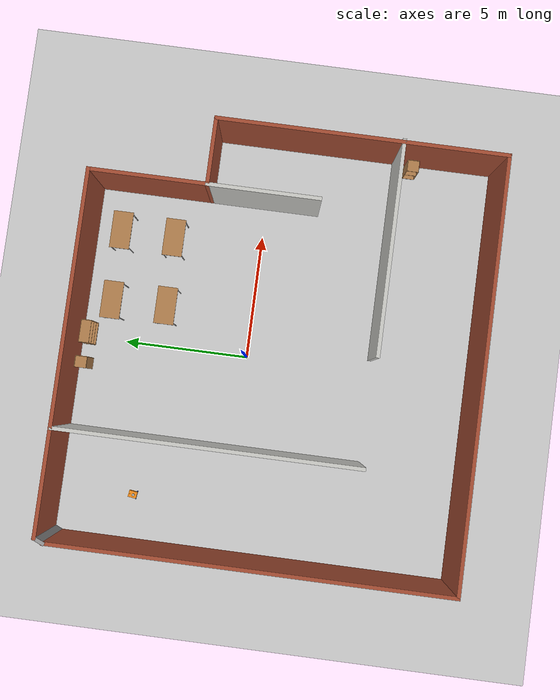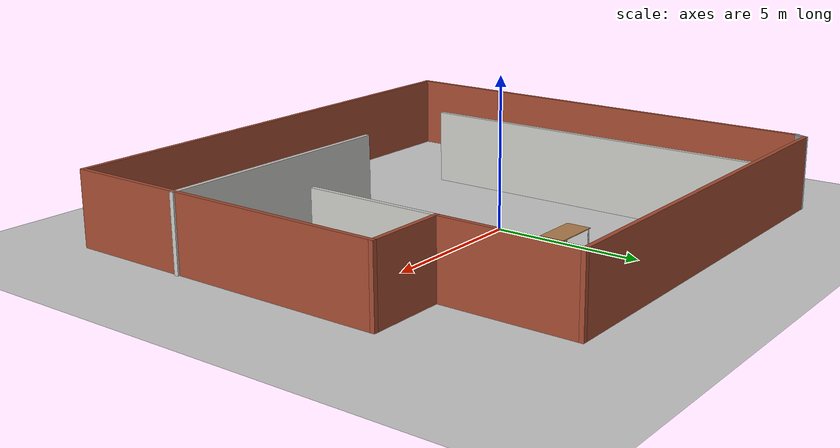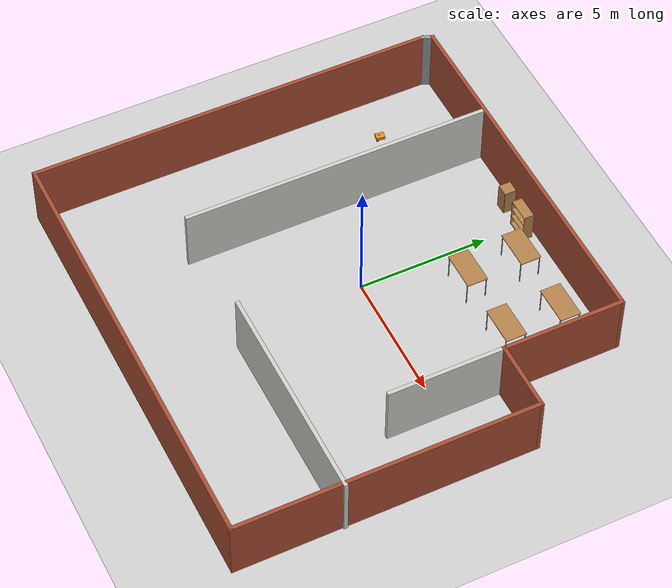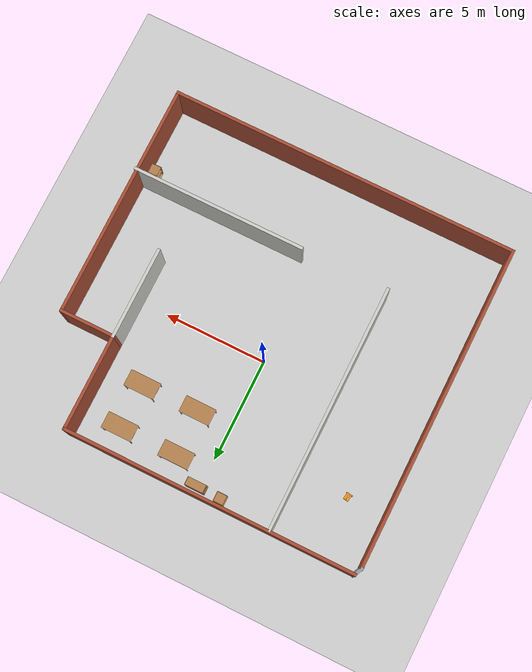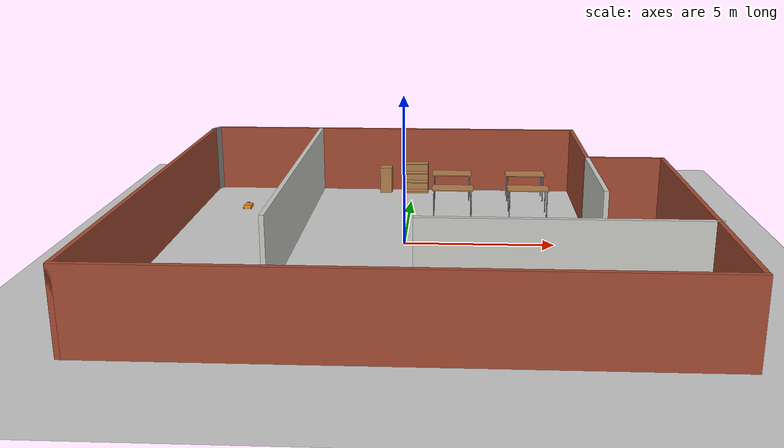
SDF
<sdf version="1.7">
 <world name="default">
  <light name="sun" type="directional">
   <pose>0 0 10 0 -0 0</pose>
   <diffuse>0.8 0.8 0.8 1</diffuse>
   <specular>0.2 0.2 0.2 1</specular>
   <attenuation>
    <range>1000</range>
    <constant>0.9</constant>
    <linear>0.01</linear>
    <quadratic>0.001</quadratic>
   </attenuation>
   <direction>-0.5 0.1 -0.9</direction>
   <spot><inner_angle>0</inner_angle><outer_angle>0</outer_angle><falloff>0</falloff></spot>
  </light>
  <model name="ground_plane">
   <static>1</static>
   <link name="link">
    <collision name="collision">
     <geometry><plane><normal>0 0 1</normal><size>100 100</size></plane></geometry>
     <surface>
      <contact><collide_bitmask>65535</collide_bitmask></contact>
      <friction><ode><mu>100</mu><mu2>50</mu2></ode></friction>
     </surface>
    </collision>
    <visual name="visual">
     <cast_shadows>0</cast_shadows>
     <geometry><plane><normal>0 0 1</normal><size>100 100</size></plane></geometry>
     <material>
      <script><uri>file://media/materials/scripts/gazebo.material</uri><name>Gazebo/Grey</name></script>
     </material>
    </visual>
   </link>
  </model>
  <gravity>0 0 -9.8</gravity>
  <magnetic_field>6e-06 2.3e-05 -4.2e-05</magnetic_field>
  <atmosphere type="adiabatic"/>
  <physics name="default_physics" default="0" type="ode">
   <max_step_size>0.001</max_step_size>
   <real_time_factor>1</real_time_factor>
   <real_time_update_rate>1000</real_time_update_rate>
  </physics>
  <scene><ambient>0.4 0.4 0.4 1</ambient><background>0.7 0.7 0.7 1</background><shadows>1</shadows></scene>
  <spherical_coordinates>
   <surface_model>EARTH_WGS84</surface_model>
   <latitude_deg>0</latitude_deg>
   <longitude_deg>0</longitude_deg>
   <elevation>0</elevation>
   <heading_deg>0</heading_deg>
  </spherical_coordinates>
  <model name="gcamp_small_building">
   <pose>0.46855 -1.10251 0 0 -0 0</pose>
   <link name="Wall_11">
    <collision name="Wall_11_Collision">
     <geometry><box><size>12 0.15 2.5</size></box></geometry>
     <pose>0 0 1.25 0 -0 0</pose>
    </collision>
    <visual name="Wall_11_Visual">
     <pose>0 0 1.25 0 -0 0</pose>
     <geometry><box><size>12 0.15 2.5</size></box></geometry>
     <material>
      <script><uri>file://media/materials/scripts/gazebo.material</uri><name>Gazebo/CeilingTiled</name></script>
      <ambient>1 1 1 1</ambient>
     </material>
     <meta><layer>0</layer></meta>
    </visual>
    <pose>-4.16991 2.00561 0 0 -0 -1.5708</pose>
   </link>
   <link name="Wall_13">
    <collision name="Wall_13_Collision">
     <geometry><box><size>8.5 0.15 2.5</size></box></geometry>
     <pose>0 0 1.25 0 -0 0</pose>
    </collision>
    <visual name="Wall_13_Visual">
     <pose>0 0 1.25 0 -0 0</pose>
     <geometry><box><size>8.5 0.15 2.5</size></box></geometry>
     <material>
      <script><uri>file://media/materials/scripts/gazebo.material</uri><name>Gazebo/CeilingTiled</name></script>
      <ambient>1 1 1 1</ambient>
     </material>
     <meta><layer>0</layer></meta>
    </visual>
    <pose>4.29338 -3.92287 0 0 -0 0</pose>
   </link>
   <link name="Wall_15">
    <collision name="Wall_15_Collision">
     <geometry><box><size>4.5 0.15 2.5</size></box></geometry>
     <pose>0 0 1.25 0 -0 0</pose>
    </collision>
    <visual name="Wall_15_Visual">
     <pose>0 0 1.25 0 -0 0</pose>
     <geometry><box><size>4.5 0.15 2.5</size></box></geometry>
     <material>
      <script><uri>file://media/materials/scripts/gazebo.material</uri><name>Gazebo/CeilingTiled</name></script>
      <ambient>1 1 1 1</ambient>
     </material>
     <meta><layer>0</layer></meta>
    </visual>
    <pose>5.8051 1.18826 0 0 -0 -1.5708</pose>
   </link>
   <link name="Wall_3">
    <collision name="Wall_3_Collision">
     <geometry><box><size>15.75 0.15 2.5</size></box></geometry>
     <pose>0 0 1.25 0 -0 0</pose>
    </collision>
    <visual name="Wall_3_Visual">
     <pose>0 0 1.25 0 -0 0</pose>
     <geometry><box><size>15.75 0.15 2.5</size></box></geometry>
     <material>
      <script><uri>file://media/materials/scripts/gazebo.material</uri><name>Gazebo/Bricks</name></script>
      <ambient>1 1 1 1</ambient>
     </material>
     <meta><layer>0</layer></meta>
    </visual>
    <pose>-8.4449 -0.18674 0 0 -0 -1.5708</pose>
   </link>
   <link name="Wall_4">
    <collision name="Wall_4_Collision">
     <geometry><box><size>17 0.15 2.5</size></box></geometry>
     <pose>0 0 1.25 0 -0 0</pose>
    </collision>
    <visual name="Wall_4_Visual">
     <pose>0 0 1.25 0 -0 0</pose>
     <geometry><box><size>17 0.15 2.5</size></box></geometry>
     <material>
      <script><uri>file://media/materials/scripts/gazebo.material</uri><name>Gazebo/Bricks</name></script>
      <ambient>1 1 1 1</ambient>
     </material>
     <meta><layer>0</layer></meta>
    </visual>
    <pose>-0.019899 -7.98674 0 0 -0 0</pose>
   </link>
   <link name="Wall_5">
    <collision name="Wall_5_Collision">
     <geometry><box><size>11.5 0.15 2.5</size></box></geometry>
     <pose>0 0 1.25 0 -0 0</pose>
    </collision>
    <visual name="Wall_5_Visual">
     <pose>0 0 1.25 0 -0 0</pose>
     <geometry><box><size>11.5 0.15 2.5</size></box></geometry>
     <material>
      <script><uri>file://media/materials/scripts/gazebo.material</uri><name>Gazebo/Bricks</name></script>
      <ambient>1 1 1 1</ambient>
     </material>
     <meta><layer>0</layer></meta>
    </visual>
    <pose>8.4051 -2.31174 0 0 -0 1.5708</pose>
   </link>
   <link name="Wall_6">
    <collision name="Wall_6_Collision">
     <geometry><box><size>2.75 0.15 2.5</size></box></geometry>
     <pose>0 0 1.25 0 -0 0</pose>
    </collision>
    <visual name="Wall_6_Visual">
     <pose>0 0 1.25 0 -0 0</pose>
     <geometry><box><size>2.75 0.15 2.5</size></box></geometry>
     <material>
      <script><uri>file://media/materials/scripts/gazebo.material</uri><name>Gazebo/Bricks</name></script>
      <ambient>1 1 1 1</ambient>
     </material>
     <meta><layer>0</layer></meta>
    </visual>
    <pose>7.1051 3.36326 0 0 -0 3.14159</pose>
   </link>
   <link name="Wall_7">
    <collision name="Wall_7_Collision">
     <geometry><box><size>4.75 0.15 2.5</size></box></geometry>
     <pose>0 0 1.25 0 -0 0</pose>
    </collision>
    <visual name="Wall_7_Visual">
     <pose>0 0 1.25 0 -0 0</pose>
     <geometry><box><size>4.75 0.15 2.5</size></box></geometry>
     <material>
      <script><uri>file://media/materials/scripts/gazebo.material</uri><name>Gazebo/Bricks</name></script>
      <ambient>1 1 1 1</ambient>
     </material>
     <meta><layer>0</layer></meta>
    </visual>
    <pose>5.8051 5.66326 0 0 -0 1.5708</pose>
   </link>
   <link name="Wall_8">
    <collision name="Wall_8_Collision">
     <geometry><box><size>14.25 0.15 2.5</size></box></geometry>
     <pose>0 0 1.25 0 -0 0</pose>
    </collision>
    <visual name="Wall_8_Visual">
     <pose>0 0 1.25 0 -0 0</pose>
     <geometry><box><size>14.25 0.15 2.5</size></box></geometry>
     <material>
      <script><uri>file://media/materials/scripts/gazebo.material</uri><name>Gazebo/Bricks</name></script>
      <ambient>1 1 1 1</ambient>
     </material>
     <meta><layer>0</layer></meta>
    </visual>
    <pose>-1.2449 7.96326 0 0 -0 3.14159</pose>
   </link>
   <link name="Wall_9">
    <collision name="Wall_9_Collision">
     <geometry><box><size>0.530789 0.15 2.5</size></box></geometry>
     <pose>0 0 1.25 0 -0 0</pose>
    </collision>
    <visual name="Wall_9_Visual">
     <pose>0 0 1.25 0 -0 0</pose>
     <geometry><box><size>0.530789 0.15 2.5</size></box></geometry>
     <material>
      <script><uri>file://media/materials/scripts/gazebo.material</uri><name>Gazebo/Grey</name></script>
      <ambient>1 1 1 1</ambient>
     </material>
     <meta><layer>0</layer></meta>
    </visual>
    <pose>-8.3699 7.78826 0 0 -0 -1.97569</pose>
   </link>
   <static>1</static>
  </model>
  <model name="table">
   <static>1</static>
   <link name="link">
    <collision name="surface">
     <pose>0 0 1 0 -0 0</pose>
     <geometry><box><size>1.5 0.8 0.03</size></box></geometry>
     <surface><friction><ode><mu>0.6</mu><mu2>0.6</mu2></ode></friction></surface>
    </collision>
    <visual name="visual1">
     <pose>0 0 1 0 -0 0</pose>
     <geometry><box><size>1.5 0.8 0.03</size></box></geometry>
     <material>
      <script><uri>file://media/materials/scripts/gazebo.material</uri><name>Gazebo/Wood</name></script>
     </material>
    </visual>
    <collision name="front_left_leg">
     <pose>0.68 0.38 0.5 0 -0 0</pose>
     <geometry><cylinder><radius>0.02</radius><length>1</length></cylinder></geometry>
    </collision>
    <visual name="front_left_leg">
     <pose>0.68 0.38 0.5 0 -0 0</pose>
     <geometry><cylinder><radius>0.02</radius><length>1</length></cylinder></geometry>
     <material>
      <script><uri>file://media/materials/scripts/gazebo.material</uri><name>Gazebo/Grey</name></script>
     </material>
    </visual>
    <collision name="front_right_leg">
     <pose>0.68 -0.38 0.5 0 -0 0</pose>
     <geometry><cylinder><radius>0.02</radius><length>1</length></cylinder></geometry>
    </collision>
    <visual name="front_right_leg">
     <pose>0.68 -0.38 0.5 0 -0 0</pose>
     <geometry><cylinder><radius>0.02</radius><length>1</length></cylinder></geometry>
     <material>
      <script><uri>file://media/materials/scripts/gazebo.material</uri><name>Gazebo/Grey</name></script>
     </material>
    </visual>
    <collision name="back_right_leg">
     <pose>-0.68 -0.38 0.5 0 -0 0</pose>
     <geometry><cylinder><radius>0.02</radius><length>1</length></cylinder></geometry>
    </collision>
    <visual name="back_right_leg">
     <pose>-0.68 -0.38 0.5 0 -0 0</pose>
     <geometry><cylinder><radius>0.02</radius><length>1</length></cylinder></geometry>
     <material>
      <script><uri>file://media/materials/scripts/gazebo.material</uri><name>Gazebo/Grey</name></script>
     </material>
    </visual>
    <collision name="back_left_leg">
     <pose>-0.68 0.38 0.5 0 -0 0</pose>
     <geometry><cylinder><radius>0.02</radius><length>1</length></cylinder></geometry>
    </collision>
    <visual name="back_left_leg">
     <pose>-0.68 0.38 0.5 0 -0 0</pose>
     <geometry><cylinder><radius>0.02</radius><length>1</length></cylinder></geometry>
     <material>
      <script><uri>file://media/materials/scripts/gazebo.material</uri><name>Gazebo/Grey</name></script>
     </material>
    </visual>
   </link>
   <pose>4.38563 5.61757 0 0 -0 0</pose>
  </model>
  <model name="table_0">
   <static>1</static>
   <link name="link">
    <collision name="surface">
     <pose>0 0 1 0 -0 0</pose>
     <geometry><box><size>1.5 0.8 0.03</size></box></geometry>
     <surface><friction><ode><mu>0.6</mu><mu2>0.6</mu2></ode></friction></surface>
    </collision>
    <visual name="visual1">
     <pose>0 0 1 0 -0 0</pose>
     <geometry><box><size>1.5 0.8 0.03</size></box></geometry>
     <material>
      <script><uri>file://media/materials/scripts/gazebo.material</uri><name>Gazebo/Wood</name></script>
     </material>
    </visual>
    <collision name="front_left_leg">
     <pose>0.68 0.38 0.5 0 -0 0</pose>
     <geometry><cylinder><radius>0.02</radius><length>1</length></cylinder></geometry>
    </collision>
    <visual name="front_left_leg">
     <pose>0.68 0.38 0.5 0 -0 0</pose>
     <geometry><cylinder><radius>0.02</radius><length>1</length></cylinder></geometry>
     <material>
      <script><uri>file://media/materials/scripts/gazebo.material</uri><name>Gazebo/Grey</name></script>
     </material>
    </visual>
    <collision name="front_right_leg">
     <pose>0.68 -0.38 0.5 0 -0 0</pose>
     <geometry><cylinder><radius>0.02</radius><length>1</length></cylinder></geometry>
    </collision>
    <visual name="front_right_leg">
     <pose>0.68 -0.38 0.5 0 -0 0</pose>
     <geometry><cylinder><radius>0.02</radius><length>1</length></cylinder></geometry>
     <material>
      <script><uri>file://media/materials/scripts/gazebo.material</uri><name>Gazebo/Grey</name></script>
     </material>
    </visual>
    <collision name="back_right_leg">
     <pose>-0.68 -0.38 0.5 0 -0 0</pose>
     <geometry><cylinder><radius>0.02</radius><length>1</length></cylinder></geometry>
    </collision>
    <visual name="back_right_leg">
     <pose>-0.68 -0.38 0.5 0 -0 0</pose>
     <geometry><cylinder><radius>0.02</radius><length>1</length></cylinder></geometry>
     <material>
      <script><uri>file://media/materials/scripts/gazebo.material</uri><name>Gazebo/Grey</name></script>
     </material>
    </visual>
    <collision name="back_left_leg">
     <pose>-0.68 0.38 0.5 0 -0 0</pose>
     <geometry><cylinder><radius>0.02</radius><length>1</length></cylinder></geometry>
    </collision>
    <visual name="back_left_leg">
     <pose>-0.68 0.38 0.5 0 -0 0</pose>
     <geometry><cylinder><radius>0.02</radius><length>1</length></cylinder></geometry>
     <material>
      <script><uri>file://media/materials/scripts/gazebo.material</uri><name>Gazebo/Grey</name></script>
     </material>
    </visual>
   </link>
   <pose>4.35793 3.48172 0 0 -0 0</pose>
  </model>
  <model name="bookshelf">
   <static>1</static>
   <link name="link">
    <inertial><mass>1</mass></inertial>
    <collision name="back">
     <pose>0 0.005 0.6 0 -0 0</pose>
     <geometry><box><size>0.9 0.01 1.2</size></box></geometry>
    </collision>
    <visual name="visual1">
     <pose>0 0.005 0.6 0 -0 0</pose>
     <geometry><box><size>0.9 0.01 1.2</size></box></geometry>
     <material>
      <script><uri>file://media/materials/scripts/gazebo.material</uri><name>Gazebo/Wood</name></script>
     </material>
    </visual>
    <collision name="left_side">
     <pose>0.45 -0.195 0.6 0 -0 0</pose>
     <geometry><box><size>0.02 0.4 1.2</size></box></geometry>
    </collision>
    <visual name="visual2">
     <pose>0.45 -0.195 0.6 0 -0 0</pose>
     <geometry><box><size>0.02 0.4 1.2</size></box></geometry>
     <material>
      <script><uri>file://media/materials/scripts/gazebo.material</uri><name>Gazebo/Wood</name></script>
     </material>
    </visual>
    <collision name="right_side">
     <pose>-0.45 -0.195 0.6 0 -0 0</pose>
     <geometry><box><size>0.02 0.4 1.2</size></box></geometry>
    </collision>
    <visual name="visual3">
     <pose>-0.45 -0.195 0.6 0 -0 0</pose>
     <geometry><box><size>0.02 0.4 1.2</size></box></geometry>
     <material>
      <script><uri>file://media/materials/scripts/gazebo.material</uri><name>Gazebo/Wood</name></script>
     </material>
    </visual>
    <collision name="bottom">
     <pose>0 -0.195 0.03 0 -0 0</pose>
     <geometry><box><size>0.88 0.4 0.06</size></box></geometry>
    </collision>
    <visual name="visual4">
     <pose>0 -0.195 0.03 0 -0 0</pose>
     <geometry><box><size>0.88 0.4 0.06</size></box></geometry>
     <material>
      <script><uri>file://media/materials/scripts/gazebo.material</uri><name>Gazebo/Wood</name></script>
     </material>
    </visual>
    <collision name="top">
     <pose>0 -0.195 1.19 0 -0 0</pose>
     <geometry><box><size>0.88 0.4 0.02</size></box></geometry>
    </collision>
    <visual name="visual5">
     <pose>0 -0.195 1.19 0 -0 0</pose>
     <geometry><box><size>0.88 0.4 0.02</size></box></geometry>
     <material>
      <script><uri>file://media/materials/scripts/gazebo.material</uri><name>Gazebo/Wood</name></script>
     </material>
    </visual>
    <collision name="low_shelf">
     <pose>0 -0.195 0.43 0 -0 0</pose>
     <geometry><box><size>0.88 0.4 0.02</size></box></geometry>
    </collision>
    <visual name="visual6">
     <pose>0 -0.195 0.43 0 -0 0</pose>
     <geometry><box><size>0.88 0.4 0.02</size></box></geometry>
     <material>
      <script><uri>file://media/materials/scripts/gazebo.material</uri><name>Gazebo/Wood</name></script>
     </material>
    </visual>
    <collision name="high_shelf">
     <pose>0 -0.195 0.8 0 -0 0</pose>
     <geometry><box><size>0.88 0.4 0.02</size></box></geometry>
    </collision>
    <visual name="visual7">
     <pose>0 -0.195 0.8 0 -0 0</pose>
     <geometry><box><size>0.88 0.4 0.02</size></box></geometry>
     <material>
      <script><uri>file://media/materials/scripts/gazebo.material</uri><name>Gazebo/Wood</name></script>
     </material>
    </visual>
   </link>
   <pose>0.151486 6.62816 0 0 -0 0</pose>
  </model>
  <model name="cabinet">
   <static>1</static>
   <link name="cabinet_bottom_plate">
    <inertial>
     <pose>0 0 -1 0 -0 0</pose>
     <inertia><ixx>2.05</ixx><ixy>0</ixy><ixz>0</ixz><iyy>2.05</iyy><iyz>0</iyz><izz>2.05</izz></inertia>
     <mass>25</mass>
    </inertial>
    <collision name="cabinet_bottom_plate_geom">
     <pose>0 0 0.01 0 -0 0</pose>
     <geometry><box><size>0.45 0.45 0.02</size></box></geometry>
    </collision>
    <visual name="cabinet_bottom_plate_geom_visual">
     <pose>0 0 0.01 0 -0 0</pose>
     <geometry><box><size>0.45 0.45 0.02</size></box></geometry>
     <material>
      <script><uri>file://media/materials/scripts/gazebo.material</uri><name>Gazebo/Wood</name></script>
     </material>
    </visual>
    <collision name="cabinet_bottom_plate_geom_cabinet_back_plate">
     <pose>0.235 0 0.51 0 -0 0</pose>
     <geometry><box><size>0.02 0.45 1.02</size></box></geometry>
    </collision>
    <visual name="cabinet_bottom_plate_geom_cabinet_back_plate_visual">
     <pose>0.235 0 0.51 0 -0 0</pose>
     <geometry><box><size>0.02 0.45 1.02</size></box></geometry>
     <material>
      <script><uri>file://media/materials/scripts/gazebo.material</uri><name>Gazebo/Wood</name></script>
     </material>
    </visual>
    <collision name="cabinet_bottom_plate_geom_cabinet_left_plate">
     <pose>0 0.235 0.51 0 -0 0</pose>
     <geometry><box><size>0.45 0.02 1.02</size></box></geometry>
    </collision>
    <visual name="cabinet_bottom_plate_geom_cabinet_left_plate_visual">
     <pose>0 0.235 0.51 0 -0 0</pose>
     <geometry><box><size>0.45 0.02 1.02</size></box></geometry>
     <material>
      <script><uri>file://media/materials/scripts/gazebo.material</uri><name>Gazebo/Wood</name></script>
     </material>
    </visual>
    <collision name="cabinet_bottom_plate_geom_cabinet_middle_plate">
     <pose>0 0 0.51 0 -0 0</pose>
     <geometry><box><size>0.45 0.45 0.02</size></box></geometry>
    </collision>
    <visual name="cabinet_bottom_plate_geom_cabinet_middle_plate_visual">
     <pose>0 0 0.51 0 -0 0</pose>
     <geometry><box><size>0.45 0.45 0.02</size></box></geometry>
     <material>
      <script><uri>file://media/materials/scripts/gazebo.material</uri><name>Gazebo/Wood</name></script>
     </material>
    </visual>
    <collision name="cabinet_bottom_plate_geom_cabinet_right_plate">
     <pose>0 -0.235 0.51 0 -0 0</pose>
     <geometry><box><size>0.45 0.02 1.02</size></box></geometry>
    </collision>
    <visual name="cabinet_bottom_plate_geom_cabinet_right_plate_visual">
     <pose>0 -0.235 0.51 0 -0 0</pose>
     <geometry><box><size>0.45 0.02 1.02</size></box></geometry>
     <material>
      <script><uri>file://media/materials/scripts/gazebo.material</uri><name>Gazebo/Wood</name></script>
     </material>
    </visual>
    <collision name="cabinet_bottom_plate_geom_cabinet_top_plate">
     <pose>0 0 1.01 0 -0 0</pose>
     <geometry><box><size>0.45 0.45 0.02</size></box></geometry>
    </collision>
    <visual name="cabinet_bottom_plate_geom_cabinet_top_plate_visual">
     <pose>0 0 1.01 0 -0 0</pose>
     <geometry><box><size>0.45 0.45 0.02</size></box></geometry>
     <material>
      <script><uri>file://media/materials/scripts/gazebo.material</uri><name>Gazebo/Wood</name></script>
     </material>
    </visual>
   </link>
   <pose>8.48925 -5.6963 0 0 -0 0</pose>
  </model>
  <model name="table_1">
   <static>1</static>
   <link name="link">
    <collision name="surface">
     <pose>0 0 1 0 -0 0</pose>
     <geometry><box><size>1.5 0.8 0.03</size></box></geometry>
     <surface><friction><ode><mu>0.6</mu><mu2>0.6</mu2></ode></friction></surface>
    </collision>
    <visual name="visual1">
     <pose>0 0 1 0 -0 0</pose>
     <geometry><box><size>1.5 0.8 0.03</size></box></geometry>
     <material>
      <script><uri>file://media/materials/scripts/gazebo.material</uri><name>Gazebo/Wood</name></script>
     </material>
    </visual>
    <collision name="front_left_leg">
     <pose>0.68 0.38 0.5 0 -0 0</pose>
     <geometry><cylinder><radius>0.02</radius><length>1</length></cylinder></geometry>
    </collision>
    <visual name="front_left_leg">
     <pose>0.68 0.38 0.5 0 -0 0</pose>
     <geometry><cylinder><radius>0.02</radius><length>1</length></cylinder></geometry>
     <material>
      <script><uri>file://media/materials/scripts/gazebo.material</uri><name>Gazebo/Grey</name></script>
     </material>
    </visual>
    <collision name="front_right_leg">
     <pose>0.68 -0.38 0.5 0 -0 0</pose>
     <geometry><cylinder><radius>0.02</radius><length>1</length></cylinder></geometry>
    </collision>
    <visual name="front_right_leg">
     <pose>0.68 -0.38 0.5 0 -0 0</pose>
     <geometry><cylinder><radius>0.02</radius><length>1</length></cylinder></geometry>
     <material>
      <script><uri>file://media/materials/scripts/gazebo.material</uri><name>Gazebo/Grey</name></script>
     </material>
    </visual>
    <collision name="back_right_leg">
     <pose>-0.68 -0.38 0.5 0 -0 0</pose>
     <geometry><cylinder><radius>0.02</radius><length>1</length></cylinder></geometry>
    </collision>
    <visual name="back_right_leg">
     <pose>-0.68 -0.38 0.5 0 -0 0</pose>
     <geometry><cylinder><radius>0.02</radius><length>1</length></cylinder></geometry>
     <material>
      <script><uri>file://media/materials/scripts/gazebo.material</uri><name>Gazebo/Grey</name></script>
     </material>
    </visual>
    <collision name="back_left_leg">
     <pose>-0.68 0.38 0.5 0 -0 0</pose>
     <geometry><cylinder><radius>0.02</radius><length>1</length></cylinder></geometry>
    </collision>
    <visual name="back_left_leg">
     <pose>-0.68 0.38 0.5 0 -0 0</pose>
     <geometry><cylinder><radius>0.02</radius><length>1</length></cylinder></geometry>
     <material>
      <script><uri>file://media/materials/scripts/gazebo.material</uri><name>Gazebo/Grey</name></script>
     </material>
    </visual>
   </link>
   <pose>1.54863 5.60652 0 0 -0 0</pose>
  </model>
  <model name="table_2">
   <static>1</static>
   <link name="link">
    <collision name="surface">
     <pose>0 0 1 0 -0 0</pose>
     <geometry><box><size>1.5 0.8 0.03</size></box></geometry>
     <surface><friction><ode><mu>0.6</mu><mu2>0.6</mu2></ode></friction></surface>
    </collision>
    <visual name="visual1">
     <pose>0 0 1 0 -0 0</pose>
     <geometry><box><size>1.5 0.8 0.03</size></box></geometry>
     <material>
      <script><uri>file://media/materials/scripts/gazebo.material</uri><name>Gazebo/Wood</name></script>
     </material>
    </visual>
    <collision name="front_left_leg">
     <pose>0.68 0.38 0.5 0 -0 0</pose>
     <geometry><cylinder><radius>0.02</radius><length>1</length></cylinder></geometry>
    </collision>
    <visual name="front_left_leg">
     <pose>0.68 0.38 0.5 0 -0 0</pose>
     <geometry><cylinder><radius>0.02</radius><length>1</length></cylinder></geometry>
     <material>
      <script><uri>file://media/materials/scripts/gazebo.material</uri><name>Gazebo/Grey</name></script>
     </material>
    </visual>
    <collision name="front_right_leg">
     <pose>0.68 -0.38 0.5 0 -0 0</pose>
     <geometry><cylinder><radius>0.02</radius><length>1</length></cylinder></geometry>
    </collision>
    <visual name="front_right_leg">
     <pose>0.68 -0.38 0.5 0 -0 0</pose>
     <geometry><cylinder><radius>0.02</radius><length>1</length></cylinder></geometry>
     <material>
      <script><uri>file://media/materials/scripts/gazebo.material</uri><name>Gazebo/Grey</name></script>
     </material>
    </visual>
    <collision name="back_right_leg">
     <pose>-0.68 -0.38 0.5 0 -0 0</pose>
     <geometry><cylinder><radius>0.02</radius><length>1</length></cylinder></geometry>
    </collision>
    <visual name="back_right_leg">
     <pose>-0.68 -0.38 0.5 0 -0 0</pose>
     <geometry><cylinder><radius>0.02</radius><length>1</length></cylinder></geometry>
     <material>
      <script><uri>file://media/materials/scripts/gazebo.material</uri><name>Gazebo/Grey</name></script>
     </material>
    </visual>
    <collision name="back_left_leg">
     <pose>-0.68 0.38 0.5 0 -0 0</pose>
     <geometry><cylinder><radius>0.02</radius><length>1</length></cylinder></geometry>
    </collision>
    <visual name="back_left_leg">
     <pose>-0.68 0.38 0.5 0 -0 0</pose>
     <geometry><cylinder><radius>0.02</radius><length>1</length></cylinder></geometry>
     <material>
      <script><uri>file://media/materials/scripts/gazebo.material</uri><name>Gazebo/Grey</name></script>
     </material>
    </visual>
   </link>
   <pose>1.5944 3.43185 0 0 -0 0</pose>
  </model>
  <model name="cabinet_0">
   <static>1</static>
   <link name="cabinet_bottom_plate">
    <inertial>
     <pose>0 0 -1 0 -0 0</pose>
     <inertia><ixx>2.05</ixx><ixy>0</ixy><ixz>0</ixz><iyy>2.05</iyy><iyz>0</iyz><izz>2.05</izz></inertia>
     <mass>25</mass>
    </inertial>
    <collision name="cabinet_bottom_plate_geom">
     <pose>0 0 0.01 0 -0 0</pose>
     <geometry><box><size>0.45 0.45 0.02</size></box></geometry>
    </collision>
    <visual name="cabinet_bottom_plate_geom_visual">
     <pose>0 0 0.01 0 -0 0</pose>
     <geometry><box><size>0.45 0.45 0.02</size></box></geometry>
     <material>
      <script><uri>file://media/materials/scripts/gazebo.material</uri><name>Gazebo/Wood</name></script>
     </material>
    </visual>
    <collision name="cabinet_bottom_plate_geom_cabinet_back_plate">
     <pose>0.235 0 0.51 0 -0 0</pose>
     <geometry><box><size>0.02 0.45 1.02</size></box></geometry>
    </collision>
    <visual name="cabinet_bottom_plate_geom_cabinet_back_plate_visual">
     <pose>0.235 0 0.51 0 -0 0</pose>
     <geometry><box><size>0.02 0.45 1.02</size></box></geometry>
     <material>
      <script><uri>file://media/materials/scripts/gazebo.material</uri><name>Gazebo/Wood</name></script>
     </material>
    </visual>
    <collision name="cabinet_bottom_plate_geom_cabinet_left_plate">
     <pose>0 0.235 0.51 0 -0 0</pose>
     <geometry><box><size>0.45 0.02 1.02</size></box></geometry>
    </collision>
    <visual name="cabinet_bottom_plate_geom_cabinet_left_plate_visual">
     <pose>0 0.235 0.51 0 -0 0</pose>
     <geometry><box><size>0.45 0.02 1.02</size></box></geometry>
     <material>
      <script><uri>file://media/materials/scripts/gazebo.material</uri><name>Gazebo/Wood</name></script>
     </material>
    </visual>
    <collision name="cabinet_bottom_plate_geom_cabinet_middle_plate">
     <pose>0 0 0.51 0 -0 0</pose>
     <geometry><box><size>0.45 0.45 0.02</size></box></geometry>
    </collision>
    <visual name="cabinet_bottom_plate_geom_cabinet_middle_plate_visual">
     <pose>0 0 0.51 0 -0 0</pose>
     <geometry><box><size>0.45 0.45 0.02</size></box></geometry>
     <material>
      <script><uri>file://media/materials/scripts/gazebo.material</uri><name>Gazebo/Wood</name></script>
     </material>
    </visual>
    <collision name="cabinet_bottom_plate_geom_cabinet_right_plate">
     <pose>0 -0.235 0.51 0 -0 0</pose>
     <geometry><box><size>0.45 0.02 1.02</size></box></geometry>
    </collision>
    <visual name="cabinet_bottom_plate_geom_cabinet_right_plate_visual">
     <pose>0 -0.235 0.51 0 -0 0</pose>
     <geometry><box><size>0.45 0.02 1.02</size></box></geometry>
     <material>
      <script><uri>file://media/materials/scripts/gazebo.material</uri><name>Gazebo/Wood</name></script>
     </material>
    </visual>
    <collision name="cabinet_bottom_plate_geom_cabinet_top_plate">
     <pose>0 0 1.01 0 -0 0</pose>
     <geometry><box><size>0.45 0.45 0.02</size></box></geometry>
    </collision>
    <visual name="cabinet_bottom_plate_geom_cabinet_top_plate_visual">
     <pose>0 0 1.01 0 -0 0</pose>
     <geometry><box><size>0.45 0.45 0.02</size></box></geometry>
     <material>
      <script><uri>file://media/materials/scripts/gazebo.material</uri><name>Gazebo/Wood</name></script>
     </material>
    </visual>
   </link>
   <pose>-1.07996 6.47759 0 0 -0 0</pose>
  </model>
  <model name="my_bot">
   <link name="base_link">
    <inertial>
     <pose>-0.055733 0 0.059562 0 -0 0</pose>
     <mass>0.525</mass>
     <inertia>
      <ixx>0.00400333</ixx>
      <ixy>0</ixy>
      <ixz>0.000205739</ixz>
      <iyy>0.00603171</iyy>
      <iyz>0</iyz>
      <izz>0.00788096</izz>
     </inertia>
    </inertial>
    <collision name="base_link_fixed_joint_lump__chassis_collision">
     <pose>-0.0585 0 0.059 0 -0 0</pose>
     <geometry><box><size>0.335 0.265 0.138</size></box></geometry>
    </collision>
    <collision name="base_link_fixed_joint_lump__caster_wheel_collision_1">
     <pose>0.099 0 -0.023 0 -0 0</pose>
     <geometry><sphere><radius>0.01</radius></sphere></geometry>
     <surface><friction><ode><mu>0.001</mu><mu2>0.001</mu2></ode></friction></surface>
    </collision>
    <visual name="base_link_fixed_joint_lump__chassis_visual">
     <pose>-0.0585 0 0.059 0 -0 0</pose>
     <geometry><box><size>0.335 0.265 0.138</size></box></geometry>
     <material>
      <script><name>Gazebo/Orange</name><uri>file://media/materials/scripts/gazebo.material</uri></script>
     </material>
    </visual>
    <visual name="base_link_fixed_joint_lump__camera_link_visual_1">
     <pose>0.05 0 0.171 0 -0 0</pose>
     <geometry><box><size>0.01 0.03 0.03</size></box></geometry>
     <material>
      <script><name>Gazebo/Black</name><uri>file://media/materials/scripts/gazebo.material</uri></script>
     </material>
    </visual>
    <visual name="base_link_fixed_joint_lump__camera_link_visual_2">
     <pose>0.05 0 0.121 0 -0 0</pose>
     <geometry><cylinder><length>0.1</length><radius>0.002</radius></cylinder></geometry>
     <material>
      <script><name>Gazebo/Black</name><uri>file://media/materials/scripts/gazebo.material</uri></script>
     </material>
    </visual>
    <visual name="base_link_fixed_joint_lump__caster_wheel_visual_3">
     <pose>0.099 0 -0.023 0 -0 0</pose>
     <geometry><sphere><radius>0.01</radius></sphere></geometry>
     <material>
      <script><name>Gazebo/White</name><uri>file://media/materials/scripts/gazebo.material</uri></script>
     </material>
    </visual>
    <visual name="base_link_fixed_joint_lump__velodyne_visual_4">
     <pose>-0.1 0 0.2 3.14159 -0 3.14159</pose>
     <geometry><cylinder><length>0.04</length><radius>0.05</radius></cylinder></geometry>
    </visual>
    <sensor name="camera" type="camera">
     <visualize>1</visualize>
     <update_rate>10</update_rate>
     <camera>
      <horizontal_fov>1.089</horizontal_fov>
      <image><format>R8G8B8</format><width>640</width><height>480</height></image>
      <clip><near>0.05</near><far>8</far></clip>
     </camera>
     <plugin name="camera_controller" filename="libgazebo_ros_camera.so">
      <frame_name>camera_link_optical</frame_name>
     </plugin>
     <pose>0.05 0 0.171 0 -0 0</pose>
    </sensor>
    <sensor name="imu_sensor" type="imu">
     <always_on>1</always_on>
     <update_rate>200</update_rate>
     <visualize>1</visualize>
     <topic>__default_topic__</topic>
     <plugin name="imu_plugin" filename="libgazebo_ros_imu_sensor.so">
      <topicName>imu_raw</topicName>
      <update_rate>0</update_rate>
      <bodyName>imu_link</bodyName>
      <updateRateHZ>200.0</updateRateHZ>
      <gaussianNoise>0.0</gaussianNoise>
      <xyzOffset>0 0 0</xyzOffset>
      <rpyOffset>0 0 0</rpyOffset>
      <frameName>base_footprint</frameName>
      <initialOrientationAsReference>1</initialOrientationAsReference>
     </plugin>
     <pose>0 0 0 3.14159 -0 3.14159</pose>
    </sensor>
    <sensor name="velodyne-VLP16" type="ray">
     <visualize>0</visualize>
     <update_rate>10</update_rate>
     <ray>
      <scan>
       <horizontal>
        <samples>440</samples>
        <resolution>1</resolution>
        <min_angle>-3.14159</min_angle>
        <max_angle>3.14159</max_angle>
       </horizontal>
       <vertical>
        <samples>16</samples>
        <resolution>1</resolution>
        <min_angle>-0.261799</min_angle>
        <max_angle>0.261799</max_angle>
       </vertical>
      </scan>
      <range><min>0.3</min><max>131</max><resolution>0.001</resolution></range>
      <noise><type>gaussian</type><mean>0</mean><stddev>0</stddev></noise>
     </ray>
     <plugin name="gazebo_ros_laser_controller" filename="libgazebo_ros_velodyne_laser.so">
      <topicName>/points_raw</topicName>
      <frameName>velodyne</frameName>
      <min_range>0.9</min_range>
      <max_range>130.0</max_range>
      <gaussianNoise>0.008</gaussianNoise>
     </plugin>
     <pose>-0.1 0 0.2 3.14159 -0 3.14159</pose>
    </sensor>
   </link>
   <joint name="left_wheel_joint" type="revolute">
    <pose relative_to="base_link">-0.2 0.1485 0 -1.5708 0 0</pose>
    <parent>base_link</parent>
    <child>left_wheel</child>
    <axis>
     <xyz>0 0 1</xyz>
     <limit><lower>-1e+16</lower><upper>1e+16</upper></limit>
     <dynamics><spring_reference>0</spring_reference><spring_stiffness>0</spring_stiffness></dynamics>
    </axis>
   </joint>
   <link name="left_wheel">
    <pose relative_to="left_wheel_joint">0 0 0 0 -0 0</pose>
    <inertial>
     <mass>0.05</mass>
     <inertia>
      <ixx>1.64292e-05</ixx>
      <ixy>0</ixy>
      <ixz>0</ixz>
      <iyy>1.64292e-05</iyy>
      <iyz>0</iyz>
      <izz>2.7225e-05</izz>
     </inertia>
    </inertial>
    <collision name="left_wheel_collision">
     <geometry><sphere><radius>0.033</radius></sphere></geometry>
    </collision>
    <visual name="left_wheel_visual">
     <geometry><cylinder><length>0.026</length><radius>0.033</radius></cylinder></geometry>
     <material>
      <script><name>Gazebo/Blue</name><uri>file://media/materials/scripts/gazebo.material</uri></script>
     </material>
    </visual>
   </link>
   <joint name="right_wheel_joint" type="revolute">
    <pose relative_to="base_link">-0.2 -0.1485 0 1.5708 -0 0</pose>
    <parent>base_link</parent>
    <child>right_wheel</child>
    <axis>
     <xyz>0 0 -1</xyz>
     <limit><lower>-1e+16</lower><upper>1e+16</upper></limit>
     <dynamics><spring_reference>0</spring_reference><spring_stiffness>0</spring_stiffness></dynamics>
    </axis>
   </joint>
   <link name="right_wheel">
    <pose relative_to="right_wheel_joint">0 0 0 0 -0 0</pose>
    <inertial>
     <mass>0.05</mass>
     <inertia>
      <ixx>1.64292e-05</ixx>
      <ixy>0</ixy>
      <ixz>0</ixz>
      <iyy>1.64292e-05</iyy>
      <iyz>0</iyz>
      <izz>2.7225e-05</izz>
     </inertia>
    </inertial>
    <collision name="right_wheel_collision">
     <geometry><sphere><radius>0.033</radius></sphere></geometry>
    </collision>
    <visual name="right_wheel_visual">
     <geometry><cylinder><length>0.026</length><radius>0.033</radius></cylinder></geometry>
     <material>
      <script><name>Gazebo/Blue</name><uri>file://media/materials/scripts/gazebo.material</uri></script>
     </material>
    </visual>
   </link>
   <plugin name="gazebo_ros2_control" filename="libgazebo_ros2_control.so">
    <parameters>/home/winter24/gcamp_ros2_ws/install/gcamp_gazebo/share/gcamp_gazebo/config/my_controllers.yaml</parameters>
    <parameters>/home/winter24/gcamp_ros2_ws/install/gcamp_gazebo/share/gcamp_gazebo/config/gaz_ros2_ctl_use_sim.yaml</parameters>
   </plugin>
   <frame name="base_footprint_joint" attached_to="base_link"/>
   <frame name="base_footprint" attached_to="base_footprint_joint"/>
   <frame name="camera_optical_joint" attached_to="camera_link"><pose>0 0 0 -1.5708 -0 -1.5708</pose></frame>
   <frame name="camera_link_optical" attached_to="camera_optical_joint"/>
   <frame name="camera_joint" attached_to="chassis"><pose>0.276 0 0.181 0 -0 0</pose></frame>
   <frame name="camera_link" attached_to="camera_joint"/>
   <frame name="caster_wheel_joint" attached_to="chassis"><pose>0.325 0 -0.013 0 -0 0</pose></frame>
   <frame name="caster_wheel" attached_to="caster_wheel_joint"/>
   <frame name="chassis_joint" attached_to="base_link"><pose>-0.226 0 -0.01 0 -0 0</pose></frame>
   <frame name="chassis" attached_to="chassis_joint"/>
   <frame name="imu_joint" attached_to="base_link"><pose>0 0 0 3.14159 -0 3.14159</pose></frame>
   <frame name="imu_link" attached_to="imu_joint"/>
   <frame name="velodyne_joint" attached_to="base_link"><pose>-0.1 0 0.2 3.14159 -0 3.14159</pose></frame>
   <frame name="velodyne" attached_to="velodyne_joint"/>
   <pose>-6.11758 3.90182 0.032999 -2.3e-05 -1.2e-05 1.4201</pose>
  </model>
 </world>
</sdf>
